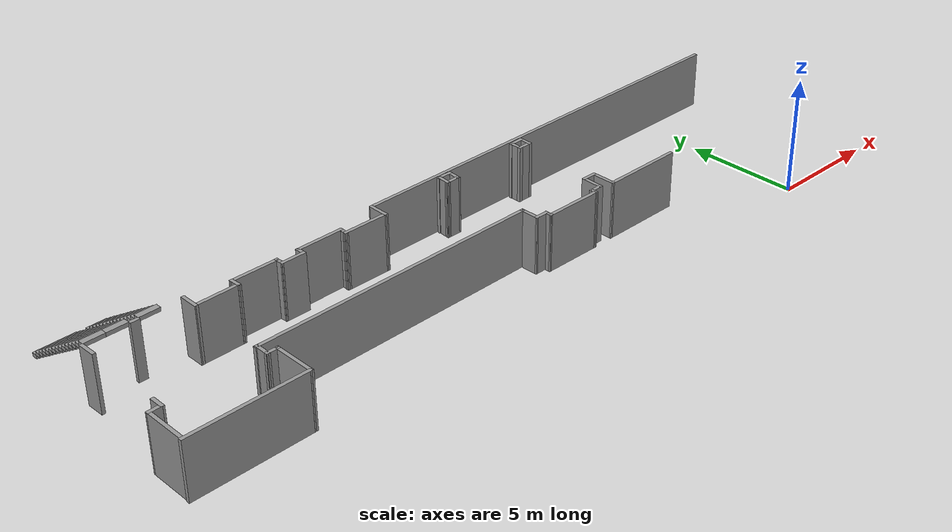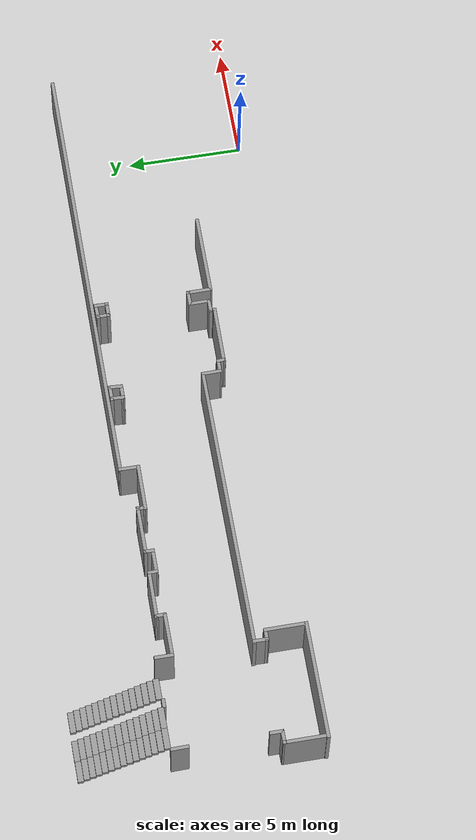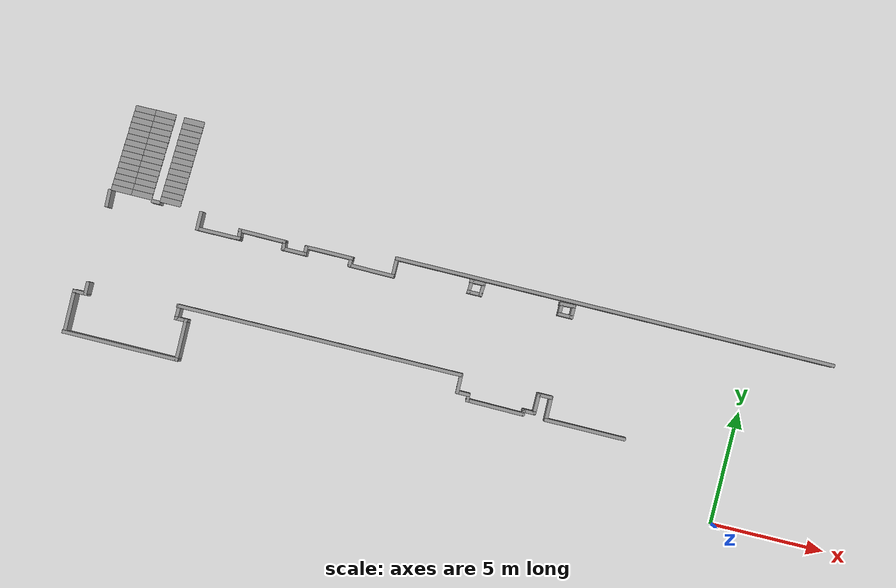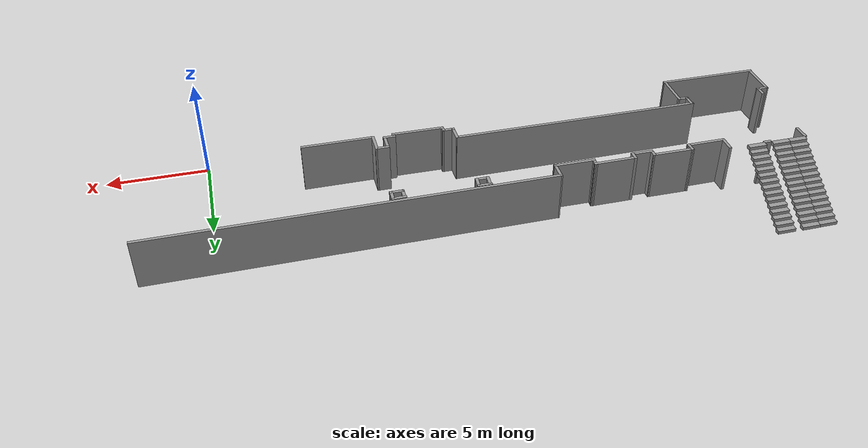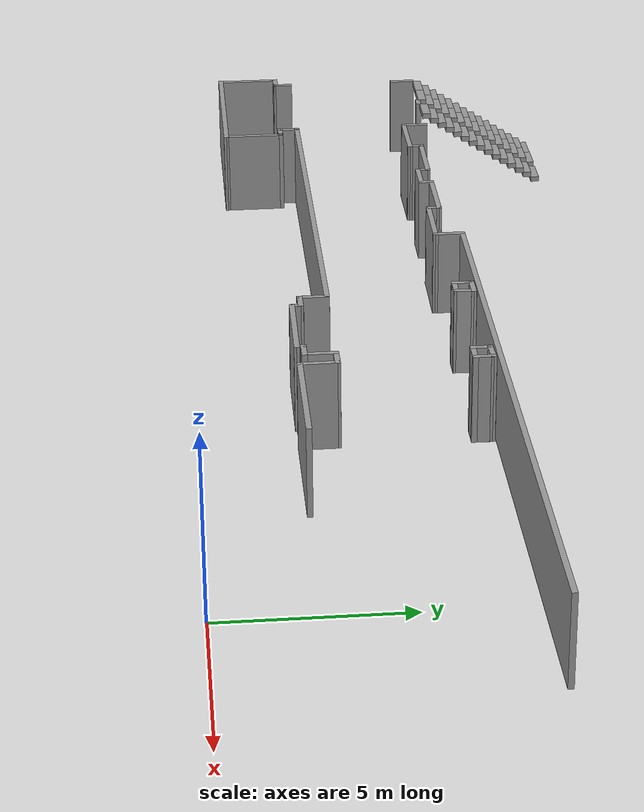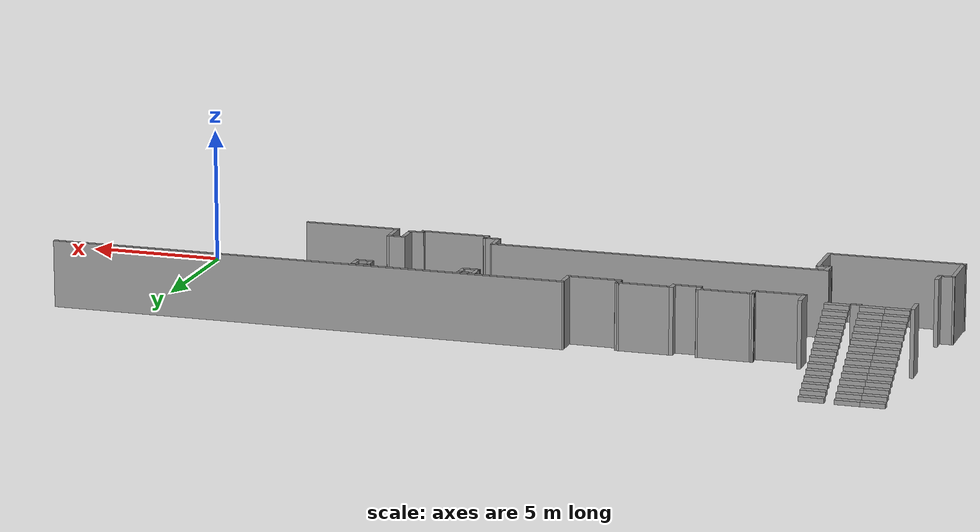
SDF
<sdf version="1.7">
 <model name="TD_n1_largo">
  <pose>-6.3187 -9.13173 0 0 -0 0</pose>
  <link name="Stairs_1">
   <visual name="Stairs_1_Visual_0">
    <pose>-21.8201 20.6908 0.083333 0 -0 0</pose>
    <geometry><box><size>0.9 0.258 0.166667</size></box></geometry>
    <material>
     <script><uri>file://media/materials/scripts/gazebo.material</uri><name>Gazebo/Grey</name></script>
     <ambient>1 1 1 1</ambient>
    </material>
    <meta><layer>0</layer></meta>
   </visual>
   <collision name="Stairs_1_Collision_0">
    <geometry><box><size>0.9 0.258 0.166667</size></box></geometry>
    <pose>-21.8201 20.6908 0.083333 0 -0 0</pose>
   </collision>
   <visual name="Stairs_1_Visual_1">
    <pose>-21.8201 20.4328 0.25 0 -0 0</pose>
    <geometry><box><size>0.9 0.258 0.166667</size></box></geometry>
    <material>
     <script><uri>file://media/materials/scripts/gazebo.material</uri><name>Gazebo/Grey</name></script>
     <ambient>1 1 1 1</ambient>
    </material>
    <meta><layer>0</layer></meta>
   </visual>
   <collision name="Stairs_1_Collision_1">
    <geometry><box><size>0.9 0.258 0.166667</size></box></geometry>
    <pose>-21.8201 20.4328 0.25 0 -0 0</pose>
   </collision>
   <visual name="Stairs_1_Visual_2">
    <pose>-21.8201 20.1748 0.416667 0 -0 0</pose>
    <geometry><box><size>0.9 0.258 0.166667</size></box></geometry>
    <material>
     <script><uri>file://media/materials/scripts/gazebo.material</uri><name>Gazebo/Grey</name></script>
     <ambient>1 1 1 1</ambient>
    </material>
    <meta><layer>0</layer></meta>
   </visual>
   <collision name="Stairs_1_Collision_2">
    <geometry><box><size>0.9 0.258 0.166667</size></box></geometry>
    <pose>-21.8201 20.1748 0.416667 0 -0 0</pose>
   </collision>
   <visual name="Stairs_1_Visual_3">
    <pose>-21.8201 19.9168 0.583333 0 -0 0</pose>
    <geometry><box><size>0.9 0.258 0.166667</size></box></geometry>
    <material>
     <script><uri>file://media/materials/scripts/gazebo.material</uri><name>Gazebo/Grey</name></script>
     <ambient>1 1 1 1</ambient>
    </material>
    <meta><layer>0</layer></meta>
   </visual>
   <collision name="Stairs_1_Collision_3">
    <geometry><box><size>0.9 0.258 0.166667</size></box></geometry>
    <pose>-21.8201 19.9168 0.583333 0 -0 0</pose>
   </collision>
   <visual name="Stairs_1_Visual_4">
    <pose>-21.8201 19.6588 0.75 0 -0 0</pose>
    <geometry><box><size>0.9 0.258 0.166667</size></box></geometry>
    <material>
     <script><uri>file://media/materials/scripts/gazebo.material</uri><name>Gazebo/Grey</name></script>
     <ambient>1 1 1 1</ambient>
    </material>
    <meta><layer>0</layer></meta>
   </visual>
   <collision name="Stairs_1_Collision_4">
    <geometry><box><size>0.9 0.258 0.166667</size></box></geometry>
    <pose>-21.8201 19.6588 0.75 0 -0 0</pose>
   </collision>
   <visual name="Stairs_1_Visual_5">
    <pose>-21.8201 19.4008 0.916667 0 -0 0</pose>
    <geometry><box><size>0.9 0.258 0.166667</size></box></geometry>
    <material>
     <script><uri>file://media/materials/scripts/gazebo.material</uri><name>Gazebo/Grey</name></script>
     <ambient>1 1 1 1</ambient>
    </material>
    <meta><layer>0</layer></meta>
   </visual>
   <collision name="Stairs_1_Collision_5">
    <geometry><box><size>0.9 0.258 0.166667</size></box></geometry>
    <pose>-21.8201 19.4008 0.916667 0 -0 0</pose>
   </collision>
   <visual name="Stairs_1_Visual_6">
    <pose>-21.8201 19.1428 1.08333 0 -0 0</pose>
    <geometry><box><size>0.9 0.258 0.166667</size></box></geometry>
    <material>
     <script><uri>file://media/materials/scripts/gazebo.material</uri><name>Gazebo/Grey</name></script>
     <ambient>1 1 1 1</ambient>
    </material>
    <meta><layer>0</layer></meta>
   </visual>
   <collision name="Stairs_1_Collision_6">
    <geometry><box><size>0.9 0.258 0.166667</size></box></geometry>
    <pose>-21.8201 19.1428 1.08333 0 -0 0</pose>
   </collision>
   <visual name="Stairs_1_Visual_7">
    <pose>-21.8201 18.8848 1.25 0 -0 0</pose>
    <geometry><box><size>0.9 0.258 0.166667</size></box></geometry>
    <material>
     <script><uri>file://media/materials/scripts/gazebo.material</uri><name>Gazebo/Grey</name></script>
     <ambient>1 1 1 1</ambient>
    </material>
    <meta><layer>0</layer></meta>
   </visual>
   <collision name="Stairs_1_Collision_7">
    <geometry><box><size>0.9 0.258 0.166667</size></box></geometry>
    <pose>-21.8201 18.8848 1.25 0 -0 0</pose>
   </collision>
   <visual name="Stairs_1_Visual_8">
    <pose>-21.8201 18.6268 1.41667 0 -0 0</pose>
    <geometry><box><size>0.9 0.258 0.166667</size></box></geometry>
    <material>
     <script><uri>file://media/materials/scripts/gazebo.material</uri><name>Gazebo/Grey</name></script>
     <ambient>1 1 1 1</ambient>
    </material>
    <meta><layer>0</layer></meta>
   </visual>
   <collision name="Stairs_1_Collision_8">
    <geometry><box><size>0.9 0.258 0.166667</size></box></geometry>
    <pose>-21.8201 18.6268 1.41667 0 -0 0</pose>
   </collision>
   <visual name="Stairs_1_Visual_9">
    <pose>-21.8201 18.3688 1.58333 0 -0 0</pose>
    <geometry><box><size>0.9 0.258 0.166667</size></box></geometry>
    <material>
     <script><uri>file://media/materials/scripts/gazebo.material</uri><name>Gazebo/Grey</name></script>
     <ambient>1 1 1 1</ambient>
    </material>
    <meta><layer>0</layer></meta>
   </visual>
   <collision name="Stairs_1_Collision_9">
    <geometry><box><size>0.9 0.258 0.166667</size></box></geometry>
    <pose>-21.8201 18.3688 1.58333 0 -0 0</pose>
   </collision>
   <visual name="Stairs_1_Visual_10">
    <pose>-21.8201 18.1108 1.75 0 -0 0</pose>
    <geometry><box><size>0.9 0.258 0.166667</size></box></geometry>
    <material>
     <script><uri>file://media/materials/scripts/gazebo.material</uri><name>Gazebo/Grey</name></script>
     <ambient>1 1 1 1</ambient>
    </material>
    <meta><layer>0</layer></meta>
   </visual>
   <collision name="Stairs_1_Collision_10">
    <geometry><box><size>0.9 0.258 0.166667</size></box></geometry>
    <pose>-21.8201 18.1108 1.75 0 -0 0</pose>
   </collision>
   <visual name="Stairs_1_Visual_11">
    <pose>-21.8201 17.8528 1.91667 0 -0 0</pose>
    <geometry><box><size>0.9 0.258 0.166667</size></box></geometry>
    <material>
     <script><uri>file://media/materials/scripts/gazebo.material</uri><name>Gazebo/Grey</name></script>
     <ambient>1 1 1 1</ambient>
    </material>
    <meta><layer>0</layer></meta>
   </visual>
   <collision name="Stairs_1_Collision_11">
    <geometry><box><size>0.9 0.258 0.166667</size></box></geometry>
    <pose>-21.8201 17.8528 1.91667 0 -0 0</pose>
   </collision>
   <visual name="Stairs_1_Visual_12">
    <pose>-21.8201 17.5948 2.08333 0 -0 0</pose>
    <geometry><box><size>0.9 0.258 0.166667</size></box></geometry>
    <material>
     <script><uri>file://media/materials/scripts/gazebo.material</uri><name>Gazebo/Grey</name></script>
     <ambient>1 1 1 1</ambient>
    </material>
    <meta><layer>0</layer></meta>
   </visual>
   <collision name="Stairs_1_Collision_12">
    <geometry><box><size>0.9 0.258 0.166667</size></box></geometry>
    <pose>-21.8201 17.5948 2.08333 0 -0 0</pose>
   </collision>
   <visual name="Stairs_1_Visual_13">
    <pose>-21.8201 17.3368 2.25 0 -0 0</pose>
    <geometry><box><size>0.9 0.258 0.166667</size></box></geometry>
    <material>
     <script><uri>file://media/materials/scripts/gazebo.material</uri><name>Gazebo/Grey</name></script>
     <ambient>1 1 1 1</ambient>
    </material>
    <meta><layer>0</layer></meta>
   </visual>
   <collision name="Stairs_1_Collision_13">
    <geometry><box><size>0.9 0.258 0.166667</size></box></geometry>
    <pose>-21.8201 17.3368 2.25 0 -0 0</pose>
   </collision>
   <visual name="Stairs_1_Visual_14">
    <pose>-21.8201 17.0788 2.41667 0 -0 0</pose>
    <geometry><box><size>0.9 0.258 0.166667</size></box></geometry>
    <material>
     <script><uri>file://media/materials/scripts/gazebo.material</uri><name>Gazebo/Grey</name></script>
     <ambient>1 1 1 1</ambient>
    </material>
    <meta><layer>0</layer></meta>
   </visual>
   <collision name="Stairs_1_Collision_14">
    <geometry><box><size>0.9 0.258 0.166667</size></box></geometry>
    <pose>-21.8201 17.0788 2.41667 0 -0 0</pose>
   </collision>
  </link>
  <link name="Stairs_2">
   <visual name="Stairs_2_Visual_0">
    <pose>-20.9263 20.6987 0.083333 0 -0 0</pose>
    <geometry><box><size>0.91 0.258667 0.166667</size></box></geometry>
    <material>
     <script><uri>file://media/materials/scripts/gazebo.material</uri><name>Gazebo/Grey</name></script>
     <ambient>1 1 1 1</ambient>
    </material>
    <meta><layer>0</layer></meta>
   </visual>
   <collision name="Stairs_2_Collision_0">
    <geometry><box><size>0.91 0.258667 0.166667</size></box></geometry>
    <pose>-20.9263 20.6987 0.083333 0 -0 0</pose>
   </collision>
   <visual name="Stairs_2_Visual_1">
    <pose>-20.9263 20.4401 0.25 0 -0 0</pose>
    <geometry><box><size>0.91 0.258667 0.166667</size></box></geometry>
    <material>
     <script><uri>file://media/materials/scripts/gazebo.material</uri><name>Gazebo/Grey</name></script>
     <ambient>1 1 1 1</ambient>
    </material>
    <meta><layer>0</layer></meta>
   </visual>
   <collision name="Stairs_2_Collision_1">
    <geometry><box><size>0.91 0.258667 0.166667</size></box></geometry>
    <pose>-20.9263 20.4401 0.25 0 -0 0</pose>
   </collision>
   <visual name="Stairs_2_Visual_2">
    <pose>-20.9263 20.1814 0.416667 0 -0 0</pose>
    <geometry><box><size>0.91 0.258667 0.166667</size></box></geometry>
    <material>
     <script><uri>file://media/materials/scripts/gazebo.material</uri><name>Gazebo/Grey</name></script>
     <ambient>1 1 1 1</ambient>
    </material>
    <meta><layer>0</layer></meta>
   </visual>
   <collision name="Stairs_2_Collision_2">
    <geometry><box><size>0.91 0.258667 0.166667</size></box></geometry>
    <pose>-20.9263 20.1814 0.416667 0 -0 0</pose>
   </collision>
   <visual name="Stairs_2_Visual_3">
    <pose>-20.9263 19.9227 0.583333 0 -0 0</pose>
    <geometry><box><size>0.91 0.258667 0.166667</size></box></geometry>
    <material>
     <script><uri>file://media/materials/scripts/gazebo.material</uri><name>Gazebo/Grey</name></script>
     <ambient>1 1 1 1</ambient>
    </material>
    <meta><layer>0</layer></meta>
   </visual>
   <collision name="Stairs_2_Collision_3">
    <geometry><box><size>0.91 0.258667 0.166667</size></box></geometry>
    <pose>-20.9263 19.9227 0.583333 0 -0 0</pose>
   </collision>
   <visual name="Stairs_2_Visual_4">
    <pose>-20.9263 19.6641 0.75 0 -0 0</pose>
    <geometry><box><size>0.91 0.258667 0.166667</size></box></geometry>
    <material>
     <script><uri>file://media/materials/scripts/gazebo.material</uri><name>Gazebo/Grey</name></script>
     <ambient>1 1 1 1</ambient>
    </material>
    <meta><layer>0</layer></meta>
   </visual>
   <collision name="Stairs_2_Collision_4">
    <geometry><box><size>0.91 0.258667 0.166667</size></box></geometry>
    <pose>-20.9263 19.6641 0.75 0 -0 0</pose>
   </collision>
   <visual name="Stairs_2_Visual_5">
    <pose>-20.9263 19.4054 0.916667 0 -0 0</pose>
    <geometry><box><size>0.91 0.258667 0.166667</size></box></geometry>
    <material>
     <script><uri>file://media/materials/scripts/gazebo.material</uri><name>Gazebo/Grey</name></script>
     <ambient>1 1 1 1</ambient>
    </material>
    <meta><layer>0</layer></meta>
   </visual>
   <collision name="Stairs_2_Collision_5">
    <geometry><box><size>0.91 0.258667 0.166667</size></box></geometry>
    <pose>-20.9263 19.4054 0.916667 0 -0 0</pose>
   </collision>
   <visual name="Stairs_2_Visual_6">
    <pose>-20.9263 19.1467 1.08333 0 -0 0</pose>
    <geometry><box><size>0.91 0.258667 0.166667</size></box></geometry>
    <material>
     <script><uri>file://media/materials/scripts/gazebo.material</uri><name>Gazebo/Grey</name></script>
     <ambient>1 1 1 1</ambient>
    </material>
    <meta><layer>0</layer></meta>
   </visual>
   <collision name="Stairs_2_Collision_6">
    <geometry><box><size>0.91 0.258667 0.166667</size></box></geometry>
    <pose>-20.9263 19.1467 1.08333 0 -0 0</pose>
   </collision>
   <visual name="Stairs_2_Visual_7">
    <pose>-20.9263 18.8881 1.25 0 -0 0</pose>
    <geometry><box><size>0.91 0.258667 0.166667</size></box></geometry>
    <material>
     <script><uri>file://media/materials/scripts/gazebo.material</uri><name>Gazebo/Grey</name></script>
     <ambient>1 1 1 1</ambient>
    </material>
    <meta><layer>0</layer></meta>
   </visual>
   <collision name="Stairs_2_Collision_7">
    <geometry><box><size>0.91 0.258667 0.166667</size></box></geometry>
    <pose>-20.9263 18.8881 1.25 0 -0 0</pose>
   </collision>
   <visual name="Stairs_2_Visual_8">
    <pose>-20.9263 18.6294 1.41667 0 -0 0</pose>
    <geometry><box><size>0.91 0.258667 0.166667</size></box></geometry>
    <material>
     <script><uri>file://media/materials/scripts/gazebo.material</uri><name>Gazebo/Grey</name></script>
     <ambient>1 1 1 1</ambient>
    </material>
    <meta><layer>0</layer></meta>
   </visual>
   <collision name="Stairs_2_Collision_8">
    <geometry><box><size>0.91 0.258667 0.166667</size></box></geometry>
    <pose>-20.9263 18.6294 1.41667 0 -0 0</pose>
   </collision>
   <visual name="Stairs_2_Visual_9">
    <pose>-20.9263 18.3707 1.58333 0 -0 0</pose>
    <geometry><box><size>0.91 0.258667 0.166667</size></box></geometry>
    <material>
     <script><uri>file://media/materials/scripts/gazebo.material</uri><name>Gazebo/Grey</name></script>
     <ambient>1 1 1 1</ambient>
    </material>
    <meta><layer>0</layer></meta>
   </visual>
   <collision name="Stairs_2_Collision_9">
    <geometry><box><size>0.91 0.258667 0.166667</size></box></geometry>
    <pose>-20.9263 18.3707 1.58333 0 -0 0</pose>
   </collision>
   <visual name="Stairs_2_Visual_10">
    <pose>-20.9263 18.1121 1.75 0 -0 0</pose>
    <geometry><box><size>0.91 0.258667 0.166667</size></box></geometry>
    <material>
     <script><uri>file://media/materials/scripts/gazebo.material</uri><name>Gazebo/Grey</name></script>
     <ambient>1 1 1 1</ambient>
    </material>
    <meta><layer>0</layer></meta>
   </visual>
   <collision name="Stairs_2_Collision_10">
    <geometry><box><size>0.91 0.258667 0.166667</size></box></geometry>
    <pose>-20.9263 18.1121 1.75 0 -0 0</pose>
   </collision>
   <visual name="Stairs_2_Visual_11">
    <pose>-20.9263 17.8534 1.91667 0 -0 0</pose>
    <geometry><box><size>0.91 0.258667 0.166667</size></box></geometry>
    <material>
     <script><uri>file://media/materials/scripts/gazebo.material</uri><name>Gazebo/Grey</name></script>
     <ambient>1 1 1 1</ambient>
    </material>
    <meta><layer>0</layer></meta>
   </visual>
   <collision name="Stairs_2_Collision_11">
    <geometry><box><size>0.91 0.258667 0.166667</size></box></geometry>
    <pose>-20.9263 17.8534 1.91667 0 -0 0</pose>
   </collision>
   <visual name="Stairs_2_Visual_12">
    <pose>-20.9263 17.5947 2.08333 0 -0 0</pose>
    <geometry><box><size>0.91 0.258667 0.166667</size></box></geometry>
    <material>
     <script><uri>file://media/materials/scripts/gazebo.material</uri><name>Gazebo/Grey</name></script>
     <ambient>1 1 1 1</ambient>
    </material>
    <meta><layer>0</layer></meta>
   </visual>
   <collision name="Stairs_2_Collision_12">
    <geometry><box><size>0.91 0.258667 0.166667</size></box></geometry>
    <pose>-20.9263 17.5947 2.08333 0 -0 0</pose>
   </collision>
   <visual name="Stairs_2_Visual_13">
    <pose>-20.9263 17.3361 2.25 0 -0 0</pose>
    <geometry><box><size>0.91 0.258667 0.166667</size></box></geometry>
    <material>
     <script><uri>file://media/materials/scripts/gazebo.material</uri><name>Gazebo/Grey</name></script>
     <ambient>1 1 1 1</ambient>
    </material>
    <meta><layer>0</layer></meta>
   </visual>
   <collision name="Stairs_2_Collision_13">
    <geometry><box><size>0.91 0.258667 0.166667</size></box></geometry>
    <pose>-20.9263 17.3361 2.25 0 -0 0</pose>
   </collision>
   <visual name="Stairs_2_Visual_14">
    <pose>-20.9263 17.0774 2.41667 0 -0 0</pose>
    <geometry><box><size>0.91 0.258667 0.166667</size></box></geometry>
    <material>
     <script><uri>file://media/materials/scripts/gazebo.material</uri><name>Gazebo/Grey</name></script>
     <ambient>1 1 1 1</ambient>
    </material>
    <meta><layer>0</layer></meta>
   </visual>
   <collision name="Stairs_2_Collision_14">
    <geometry><box><size>0.91 0.258667 0.166667</size></box></geometry>
    <pose>-20.9263 17.0774 2.41667 0 -0 0</pose>
   </collision>
  </link>
  <link name="Stairs_3">
   <visual name="Stairs_3_Visual_0">
    <pose>-19.6563 20.6794 0.083333 0 -0 0</pose>
    <geometry><box><size>0.91 0.257333 0.166667</size></box></geometry>
    <material>
     <script><uri>file://media/materials/scripts/gazebo.material</uri><name>Gazebo/Grey</name></script>
     <ambient>1 1 1 1</ambient>
    </material>
    <meta><layer>0</layer></meta>
   </visual>
   <collision name="Stairs_3_Collision_0">
    <geometry><box><size>0.91 0.257333 0.166667</size></box></geometry>
    <pose>-19.6563 20.6794 0.083333 0 -0 0</pose>
   </collision>
   <visual name="Stairs_3_Visual_1">
    <pose>-19.6563 20.4221 0.25 0 -0 0</pose>
    <geometry><box><size>0.91 0.257333 0.166667</size></box></geometry>
    <material>
     <script><uri>file://media/materials/scripts/gazebo.material</uri><name>Gazebo/Grey</name></script>
     <ambient>1 1 1 1</ambient>
    </material>
    <meta><layer>0</layer></meta>
   </visual>
   <collision name="Stairs_3_Collision_1">
    <geometry><box><size>0.91 0.257333 0.166667</size></box></geometry>
    <pose>-19.6563 20.4221 0.25 0 -0 0</pose>
   </collision>
   <visual name="Stairs_3_Visual_2">
    <pose>-19.6563 20.1647 0.416667 0 -0 0</pose>
    <geometry><box><size>0.91 0.257333 0.166667</size></box></geometry>
    <material>
     <script><uri>file://media/materials/scripts/gazebo.material</uri><name>Gazebo/Grey</name></script>
     <ambient>1 1 1 1</ambient>
    </material>
    <meta><layer>0</layer></meta>
   </visual>
   <collision name="Stairs_3_Collision_2">
    <geometry><box><size>0.91 0.257333 0.166667</size></box></geometry>
    <pose>-19.6563 20.1647 0.416667 0 -0 0</pose>
   </collision>
   <visual name="Stairs_3_Visual_3">
    <pose>-19.6563 19.9074 0.583333 0 -0 0</pose>
    <geometry><box><size>0.91 0.257333 0.166667</size></box></geometry>
    <material>
     <script><uri>file://media/materials/scripts/gazebo.material</uri><name>Gazebo/Grey</name></script>
     <ambient>1 1 1 1</ambient>
    </material>
    <meta><layer>0</layer></meta>
   </visual>
   <collision name="Stairs_3_Collision_3">
    <geometry><box><size>0.91 0.257333 0.166667</size></box></geometry>
    <pose>-19.6563 19.9074 0.583333 0 -0 0</pose>
   </collision>
   <visual name="Stairs_3_Visual_4">
    <pose>-19.6563 19.6501 0.75 0 -0 0</pose>
    <geometry><box><size>0.91 0.257333 0.166667</size></box></geometry>
    <material>
     <script><uri>file://media/materials/scripts/gazebo.material</uri><name>Gazebo/Grey</name></script>
     <ambient>1 1 1 1</ambient>
    </material>
    <meta><layer>0</layer></meta>
   </visual>
   <collision name="Stairs_3_Collision_4">
    <geometry><box><size>0.91 0.257333 0.166667</size></box></geometry>
    <pose>-19.6563 19.6501 0.75 0 -0 0</pose>
   </collision>
   <visual name="Stairs_3_Visual_5">
    <pose>-19.6563 19.3927 0.916667 0 -0 0</pose>
    <geometry><box><size>0.91 0.257333 0.166667</size></box></geometry>
    <material>
     <script><uri>file://media/materials/scripts/gazebo.material</uri><name>Gazebo/Grey</name></script>
     <ambient>1 1 1 1</ambient>
    </material>
    <meta><layer>0</layer></meta>
   </visual>
   <collision name="Stairs_3_Collision_5">
    <geometry><box><size>0.91 0.257333 0.166667</size></box></geometry>
    <pose>-19.6563 19.3927 0.916667 0 -0 0</pose>
   </collision>
   <visual name="Stairs_3_Visual_6">
    <pose>-19.6563 19.1354 1.08333 0 -0 0</pose>
    <geometry><box><size>0.91 0.257333 0.166667</size></box></geometry>
    <material>
     <script><uri>file://media/materials/scripts/gazebo.material</uri><name>Gazebo/Grey</name></script>
     <ambient>1 1 1 1</ambient>
    </material>
    <meta><layer>0</layer></meta>
   </visual>
   <collision name="Stairs_3_Collision_6">
    <geometry><box><size>0.91 0.257333 0.166667</size></box></geometry>
    <pose>-19.6563 19.1354 1.08333 0 -0 0</pose>
   </collision>
   <visual name="Stairs_3_Visual_7">
    <pose>-19.6563 18.8781 1.25 0 -0 0</pose>
    <geometry><box><size>0.91 0.257333 0.166667</size></box></geometry>
    <material>
     <script><uri>file://media/materials/scripts/gazebo.material</uri><name>Gazebo/Grey</name></script>
     <ambient>1 1 1 1</ambient>
    </material>
    <meta><layer>0</layer></meta>
   </visual>
   <collision name="Stairs_3_Collision_7">
    <geometry><box><size>0.91 0.257333 0.166667</size></box></geometry>
    <pose>-19.6563 18.8781 1.25 0 -0 0</pose>
   </collision>
   <visual name="Stairs_3_Visual_8">
    <pose>-19.6563 18.6207 1.41667 0 -0 0</pose>
    <geometry><box><size>0.91 0.257333 0.166667</size></box></geometry>
    <material>
     <script><uri>file://media/materials/scripts/gazebo.material</uri><name>Gazebo/Grey</name></script>
     <ambient>1 1 1 1</ambient>
    </material>
    <meta><layer>0</layer></meta>
   </visual>
   <collision name="Stairs_3_Collision_8">
    <geometry><box><size>0.91 0.257333 0.166667</size></box></geometry>
    <pose>-19.6563 18.6207 1.41667 0 -0 0</pose>
   </collision>
   <visual name="Stairs_3_Visual_9">
    <pose>-19.6563 18.3634 1.58333 0 -0 0</pose>
    <geometry><box><size>0.91 0.257333 0.166667</size></box></geometry>
    <material>
     <script><uri>file://media/materials/scripts/gazebo.material</uri><name>Gazebo/Grey</name></script>
     <ambient>1 1 1 1</ambient>
    </material>
    <meta><layer>0</layer></meta>
   </visual>
   <collision name="Stairs_3_Collision_9">
    <geometry><box><size>0.91 0.257333 0.166667</size></box></geometry>
    <pose>-19.6563 18.3634 1.58333 0 -0 0</pose>
   </collision>
   <visual name="Stairs_3_Visual_10">
    <pose>-19.6563 18.1061 1.75 0 -0 0</pose>
    <geometry><box><size>0.91 0.257333 0.166667</size></box></geometry>
    <material>
     <script><uri>file://media/materials/scripts/gazebo.material</uri><name>Gazebo/Grey</name></script>
     <ambient>1 1 1 1</ambient>
    </material>
    <meta><layer>0</layer></meta>
   </visual>
   <collision name="Stairs_3_Collision_10">
    <geometry><box><size>0.91 0.257333 0.166667</size></box></geometry>
    <pose>-19.6563 18.1061 1.75 0 -0 0</pose>
   </collision>
   <visual name="Stairs_3_Visual_11">
    <pose>-19.6563 17.8487 1.91667 0 -0 0</pose>
    <geometry><box><size>0.91 0.257333 0.166667</size></box></geometry>
    <material>
     <script><uri>file://media/materials/scripts/gazebo.material</uri><name>Gazebo/Grey</name></script>
     <ambient>1 1 1 1</ambient>
    </material>
    <meta><layer>0</layer></meta>
   </visual>
   <collision name="Stairs_3_Collision_11">
    <geometry><box><size>0.91 0.257333 0.166667</size></box></geometry>
    <pose>-19.6563 17.8487 1.91667 0 -0 0</pose>
   </collision>
   <visual name="Stairs_3_Visual_12">
    <pose>-19.6563 17.5914 2.08333 0 -0 0</pose>
    <geometry><box><size>0.91 0.257333 0.166667</size></box></geometry>
    <material>
     <script><uri>file://media/materials/scripts/gazebo.material</uri><name>Gazebo/Grey</name></script>
     <ambient>1 1 1 1</ambient>
    </material>
    <meta><layer>0</layer></meta>
   </visual>
   <collision name="Stairs_3_Collision_12">
    <geometry><box><size>0.91 0.257333 0.166667</size></box></geometry>
    <pose>-19.6563 17.5914 2.08333 0 -0 0</pose>
   </collision>
   <visual name="Stairs_3_Visual_13">
    <pose>-19.6563 17.3341 2.25 0 -0 0</pose>
    <geometry><box><size>0.91 0.257333 0.166667</size></box></geometry>
    <material>
     <script><uri>file://media/materials/scripts/gazebo.material</uri><name>Gazebo/Grey</name></script>
     <ambient>1 1 1 1</ambient>
    </material>
    <meta><layer>0</layer></meta>
   </visual>
   <collision name="Stairs_3_Collision_13">
    <geometry><box><size>0.91 0.257333 0.166667</size></box></geometry>
    <pose>-19.6563 17.3341 2.25 0 -0 0</pose>
   </collision>
   <visual name="Stairs_3_Visual_14">
    <pose>-19.6563 17.0767 2.41667 0 -0 0</pose>
    <geometry><box><size>0.91 0.257333 0.166667</size></box></geometry>
    <material>
     <script><uri>file://media/materials/scripts/gazebo.material</uri><name>Gazebo/Grey</name></script>
     <ambient>1 1 1 1</ambient>
    </material>
    <meta><layer>0</layer></meta>
   </visual>
   <collision name="Stairs_3_Collision_14">
    <geometry><box><size>0.91 0.257333 0.166667</size></box></geometry>
    <pose>-19.6563 17.0767 2.41667 0 -0 0</pose>
   </collision>
  </link>
  <link name="Wall_370">
   <collision name="Wall_370_Collision">
    <geometry><box><size>0.598647 0.15 2.5</size></box></geometry>
    <pose>0 0 1.25 0 -0 0</pose>
   </collision>
   <visual name="Wall_370_Visual">
    <pose>0 0 1.25 0 -0 0</pose>
    <geometry><box><size>0.598647 0.15 2.5</size></box></geometry>
    <material>
     <script><uri>file://media/materials/scripts/gazebo.material</uri><name>Gazebo/Grey</name></script>
     <ambient>1 1 1 1</ambient>
    </material>
    <meta><layer>0</layer></meta>
   </visual>
   <pose>-22.2833 12.595 0 0 -0 -1.5708</pose>
  </link>
  <link name="Wall_371">
   <collision name="Wall_371_Collision">
    <geometry><box><size>0.632766 0.15 2.5</size></box></geometry>
    <pose>0 0 1.25 0 -0 0</pose>
   </collision>
   <visual name="Wall_371_Visual">
    <pose>0 0 1.25 0 -0 0</pose>
    <geometry><box><size>0.632766 0.15 2.5</size></box></geometry>
    <material>
     <script><uri>file://media/materials/scripts/gazebo.material</uri><name>Gazebo/Grey</name></script>
     <ambient>1 1 1 1</ambient>
    </material>
    <meta><layer>0</layer></meta>
   </visual>
   <pose>-22.5247 12.3659 0 0 -0 -3.1213</pose>
  </link>
  <link name="Wall_372">
   <collision name="Wall_372_Collision">
    <geometry><box><size>1.79841 0.15 2.5</size></box></geometry>
    <pose>0 0 1.25 0 -0 0</pose>
   </collision>
   <visual name="Wall_372_Visual">
    <pose>0 0 1.25 0 -0 0</pose>
    <geometry><box><size>1.79841 0.15 2.5</size></box></geometry>
    <material>
     <script><uri>file://media/materials/scripts/gazebo.material</uri><name>Gazebo/Grey</name></script>
     <ambient>1 1 1 1</ambient>
    </material>
    <meta><layer>0</layer></meta>
   </visual>
   <pose>-22.7623 11.5368 0 0 -0 -1.56621</pose>
  </link>
  <link name="Wall_374">
   <collision name="Wall_374_Collision">
    <geometry><box><size>5.13535 0.15 2.5</size></box></geometry>
    <pose>0 0 1.25 0 -0 0</pose>
   </collision>
   <visual name="Wall_374_Visual">
    <pose>0 0 1.25 0 -0 0</pose>
    <geometry><box><size>5.13535 0.15 2.5</size></box></geometry>
    <material>
     <script><uri>file://media/materials/scripts/gazebo.material</uri><name>Gazebo/Grey</name></script>
     <ambient>1 1 1 1</ambient>
    </material>
    <meta><layer>0</layer></meta>
   </visual>
   <pose>-20.2961 10.5582 0 0 -0 -0.001238</pose>
  </link>
  <link name="Wall_376">
   <collision name="Wall_376_Collision">
    <geometry><box><size>1.8693 0.15 2.5</size></box></geometry>
    <pose>0 0 1.25 0 -0 0</pose>
   </collision>
   <visual name="Wall_376_Visual">
    <pose>0 0 1.25 0 -0 0</pose>
    <geometry><box><size>1.8693 0.15 2.5</size></box></geometry>
    <material>
     <script><uri>file://media/materials/scripts/gazebo.material</uri><name>Gazebo/Grey</name></script>
     <ambient>1 1 1 1</ambient>
    </material>
    <meta><layer>0</layer></meta>
   </visual>
   <pose>-17.81 11.4148 0 0 -0 1.57849</pose>
  </link>
  <link name="Wall_377">
   <collision name="Wall_377_Collision">
    <geometry><box><size>0.574026 0.15 2.5</size></box></geometry>
    <pose>0 0 1.25 0 -0 0</pose>
   </collision>
   <visual name="Wall_377_Visual">
    <pose>0 0 1.25 0 -0 0</pose>
    <geometry><box><size>0.574026 0.15 2.5</size></box></geometry>
    <material>
     <script><uri>file://media/materials/scripts/gazebo.material</uri><name>Gazebo/Grey</name></script>
     <ambient>1 1 1 1</ambient>
    </material>
    <meta><layer>0</layer></meta>
   </visual>
   <pose>-18.0282 12.2744 0 0 -0 3.14159</pose>
  </link>
  <link name="Wall_378">
   <collision name="Wall_378_Collision">
    <geometry><box><size>0.683508 0.15 2.5</size></box></geometry>
    <pose>0 0 1.25 0 -0 0</pose>
   </collision>
   <visual name="Wall_378_Visual">
    <pose>0 0 1.25 0 -0 0</pose>
    <geometry><box><size>0.683508 0.15 2.5</size></box></geometry>
    <material>
     <script><uri>file://media/materials/scripts/gazebo.material</uri><name>Gazebo/Grey</name></script>
     <ambient>1 1 1 1</ambient>
    </material>
    <meta><layer>0</layer></meta>
   </visual>
   <pose>-18.2373 12.5411 0 0 -0 1.56126</pose>
  </link>
  <link name="Wall_380">
   <collision name="Wall_380_Collision">
    <geometry><box><size>12.6096 0.15 2.5</size></box></geometry>
    <pose>0 0 1.25 0 -0 0</pose>
   </collision>
   <visual name="Wall_380_Visual">
    <pose>0 0 1.25 0 -0 0</pose>
    <geometry><box><size>12.6096 0.15 2.5</size></box></geometry>
    <material>
     <script><uri>file://media/materials/scripts/gazebo.material</uri><name>Gazebo/Grey</name></script>
     <ambient>1 1 1 1</ambient>
    </material>
    <meta><layer>0</layer></meta>
   </visual>
   <pose>-12.0447 12.8233 0 0 -0 0.001914</pose>
  </link>
  <link name="Wall_383">
   <collision name="Wall_383_Collision">
    <geometry><box><size>0.7743 0.15 2.5</size></box></geometry>
    <pose>0 0 1.25 0 -0 0</pose>
   </collision>
   <visual name="Wall_383_Visual">
    <pose>0 0 1.25 0 -0 0</pose>
    <geometry><box><size>0.7743 0.15 2.5</size></box></geometry>
    <material>
     <script><uri>file://media/materials/scripts/gazebo.material</uri><name>Gazebo/Grey</name></script>
     <ambient>1 1 1 1</ambient>
    </material>
    <meta><layer>0</layer></meta>
   </visual>
   <pose>-22.3097 16.5879 0 0 -0 1.59518</pose>
  </link>
  <link name="Wall_385">
   <collision name="Wall_385_Collision">
    <geometry><box><size>0.829143 0.15 2.5</size></box></geometry>
    <pose>0 0 1.25 0 -0 0</pose>
   </collision>
   <visual name="Wall_385_Visual">
    <pose>0 0 1.25 0 -0 0</pose>
    <geometry><box><size>0.829143 0.15 2.5</size></box></geometry>
    <material>
     <script><uri>file://media/materials/scripts/gazebo.material</uri><name>Gazebo/Grey</name></script>
     <ambient>1 1 1 1</ambient>
    </material>
    <meta><layer>0</layer></meta>
   </visual>
   <pose>-18.2854 16.5754 0 0 -0 -1.56613</pose>
  </link>
  <link name="Wall_386">
   <collision name="Wall_386_Collision">
    <geometry><box><size>1.97191 0.15 2.5</size></box></geometry>
    <pose>0 0 1.25 0 -0 0</pose>
   </collision>
   <visual name="Wall_386_Visual">
    <pose>0 0 1.25 0 -0 0</pose>
    <geometry><box><size>1.97191 0.15 2.5</size></box></geometry>
    <material>
     <script><uri>file://media/materials/scripts/gazebo.material</uri><name>Gazebo/Grey</name></script>
     <ambient>1 1 1 1</ambient>
    </material>
    <meta><layer>0</layer></meta>
   </visual>
   <pose>-17.3728 16.2408 0 0 -0 0.005434</pose>
  </link>
  <link name="Wall_387">
   <collision name="Wall_387_Collision">
    <geometry><box><size>0.500132 0.15 2.5</size></box></geometry>
    <pose>0 0 1.25 0 -0 0</pose>
   </collision>
   <visual name="Wall_387_Visual">
    <pose>0 0 1.25 0 -0 0</pose>
    <geometry><box><size>0.500132 0.15 2.5</size></box></geometry>
    <material>
     <script><uri>file://media/materials/scripts/gazebo.material</uri><name>Gazebo/Grey</name></script>
     <ambient>1 1 1 1</ambient>
    </material>
    <meta><layer>0</layer></meta>
   </visual>
   <pose>-16.4695 16.4207 0 0 -0 1.61425</pose>
  </link>
  <link name="Wall_388">
   <collision name="Wall_388_Collision">
    <geometry><box><size>2.11199 0.15 2.5</size></box></geometry>
    <pose>0 0 1.25 0 -0 0</pose>
   </collision>
   <visual name="Wall_388_Visual">
    <pose>0 0 1.25 0 -0 0</pose>
    <geometry><box><size>2.11199 0.15 2.5</size></box></geometry>
    <material>
     <script><uri>file://media/materials/scripts/gazebo.material</uri><name>Gazebo/Grey</name></script>
     <ambient>1 1 1 1</ambient>
    </material>
    <meta><layer>0</layer></meta>
   </visual>
   <pose>-15.4961 16.5879 0 0 -0 -0.007752</pose>
  </link>
  <link name="Wall_389">
   <collision name="Wall_389_Collision">
    <geometry><box><size>0.454555 0.15 2.5</size></box></geometry>
    <pose>0 0 1.25 0 -0 0</pose>
   </collision>
   <visual name="Wall_389_Visual">
    <pose>0 0 1.25 0 -0 0</pose>
    <geometry><box><size>0.454555 0.15 2.5</size></box></geometry>
    <material>
     <script><uri>file://media/materials/scripts/gazebo.material</uri><name>Gazebo/Grey</name></script>
     <ambient>1 1 1 1</ambient>
    </material>
    <meta><layer>0</layer></meta>
   </visual>
   <pose>-14.5076 16.4283 0 0 -0 -1.52084</pose>
  </link>
  <link name="Wall_390">
   <collision name="Wall_390_Collision">
    <geometry><box><size>1.10815 0.15 2.5</size></box></geometry>
    <pose>0 0 1.25 0 -0 0</pose>
   </collision>
   <visual name="Wall_390_Visual">
    <pose>0 0 1.25 0 -0 0</pose>
    <geometry><box><size>1.10815 0.15 2.5</size></box></geometry>
    <material>
     <script><uri>file://media/materials/scripts/gazebo.material</uri><name>Gazebo/Grey</name></script>
     <ambient>1 1 1 1</ambient>
    </material>
    <meta><layer>0</layer></meta>
   </visual>
   <pose>-14.0209 16.2762 0 0 -0 0</pose>
  </link>
  <link name="Wall_391">
   <collision name="Wall_391_Collision">
    <geometry><box><size>0.454175 0.15 2.5</size></box></geometry>
    <pose>0 0 1.25 0 -0 0</pose>
   </collision>
   <visual name="Wall_391_Visual">
    <pose>0 0 1.25 0 -0 0</pose>
    <geometry><box><size>0.454175 0.15 2.5</size></box></geometry>
    <material>
     <script><uri>file://media/materials/scripts/gazebo.material</uri><name>Gazebo/Grey</name></script>
     <ambient>1 1 1 1</ambient>
    </material>
    <meta><layer>0</layer></meta>
   </visual>
   <pose>-13.5418 16.4283 0 0 -0 1.5708</pose>
  </link>
  <link name="Wall_392">
   <collision name="Wall_392_Collision">
    <geometry><box><size>2.1424 0.15 2.5</size></box></geometry>
    <pose>0 0 1.25 0 -0 0</pose>
   </collision>
   <visual name="Wall_392_Visual">
    <pose>0 0 1.25 0 -0 0</pose>
    <geometry><box><size>2.1424 0.15 2.5</size></box></geometry>
    <material>
     <script><uri>file://media/materials/scripts/gazebo.material</uri><name>Gazebo/Grey</name></script>
     <ambient>1 1 1 1</ambient>
    </material>
    <meta><layer>0</layer></meta>
   </visual>
   <pose>-12.5456 16.5803 0 0 -0 0</pose>
  </link>
  <link name="Wall_393">
   <collision name="Wall_393_Collision">
    <geometry><box><size>0.454555 0.15 2.5</size></box></geometry>
    <pose>0 0 1.25 0 -0 0</pose>
   </collision>
   <visual name="Wall_393_Visual">
    <pose>0 0 1.25 0 -0 0</pose>
    <geometry><box><size>0.454555 0.15 2.5</size></box></geometry>
    <material>
     <script><uri>file://media/materials/scripts/gazebo.material</uri><name>Gazebo/Grey</name></script>
     <ambient>1 1 1 1</ambient>
    </material>
    <meta><layer>0</layer></meta>
   </visual>
   <pose>-11.5571 16.4283 0 0 -0 -1.62075</pose>
  </link>
  <link name="Wall_394">
   <collision name="Wall_394_Collision">
    <geometry><box><size>2.06636 0.15 2.5</size></box></geometry>
    <pose>0 0 1.25 0 -0 0</pose>
   </collision>
   <visual name="Wall_394_Visual">
    <pose>0 0 1.25 0 -0 0</pose>
    <geometry><box><size>2.06636 0.15 2.5</size></box></geometry>
    <material>
     <script><uri>file://media/materials/scripts/gazebo.material</uri><name>Gazebo/Grey</name></script>
     <ambient>1 1 1 1</ambient>
    </material>
    <meta><layer>0</layer></meta>
   </visual>
   <pose>-10.6065 16.2686 0 0 -0 -0.007936</pose>
  </link>
  <link name="Wall_395">
   <collision name="Wall_395_Collision">
    <geometry><box><size>0.925646 0.15 2.5</size></box></geometry>
    <pose>0 0 1.25 0 -0 0</pose>
   </collision>
   <visual name="Wall_395_Visual">
    <pose>0 0 1.25 0 -0 0</pose>
    <geometry><box><size>0.925646 0.15 2.5</size></box></geometry>
    <material>
     <script><uri>file://media/materials/scripts/gazebo.material</uri><name>Gazebo/Grey</name></script>
     <ambient>1 1 1 1</ambient>
    </material>
    <meta><layer>0</layer></meta>
   </visual>
   <pose>-9.64838 16.6488 0 0 -0 1.5708</pose>
  </link>
  <link name="Wall_397">
   <collision name="Wall_397_Collision">
    <geometry><box><size>0.388008 0.15 2.5</size></box></geometry>
    <pose>0 0 1.25 0 -0 0</pose>
   </collision>
   <visual name="Wall_397_Visual">
    <pose>0 0 1.25 0 -0 0</pose>
    <geometry><box><size>0.388008 0.15 2.5</size></box></geometry>
    <material>
     <script><uri>file://media/materials/scripts/gazebo.material</uri><name>Gazebo/Grey</name></script>
     <ambient>1 1 1 1</ambient>
    </material>
    <meta><layer>0</layer></meta>
   </visual>
   <pose>-20.2903 16.919 0 0 -0 -0.008287</pose>
  </link>
  <link name="Wall_399">
   <collision name="Wall_399_Collision">
    <geometry><box><size>0.890718 0.15 2.5</size></box></geometry>
    <pose>0 0 1.25 0 -0 0</pose>
   </collision>
   <visual name="Wall_399_Visual">
    <pose>0 0 1.25 0 -0 0</pose>
    <geometry><box><size>0.890718 0.15 2.5</size></box></geometry>
    <material>
     <script><uri>file://media/materials/scripts/gazebo.material</uri><name>Gazebo/Grey</name></script>
     <ambient>1 1 1 1</ambient>
    </material>
    <meta><layer>0</layer></meta>
   </visual>
   <pose>-5.7645 12.4595 0 0 -0 -1.55294</pose>
  </link>
  <link name="Wall_400">
   <collision name="Wall_400_Collision">
    <geometry><box><size>0.639325 0.15 2.5</size></box></geometry>
    <pose>0 0 1.25 0 -0 0</pose>
   </collision>
   <visual name="Wall_400_Visual">
    <pose>0 0 1.25 0 -0 0</pose>
    <geometry><box><size>0.639325 0.15 2.5</size></box></geometry>
    <material>
     <script><uri>file://media/materials/scripts/gazebo.material</uri><name>Gazebo/Grey</name></script>
     <ambient>1 1 1 1</ambient>
    </material>
    <meta><layer>0</layer></meta>
   </visual>
   <pose>-5.51323 12.0892 0 0 -0 0</pose>
  </link>
  <link name="Wall_401">
   <collision name="Wall_401_Collision">
    <geometry><box><size>0.388417 0.15 2.5</size></box></geometry>
    <pose>0 0 1.25 0 -0 0</pose>
   </collision>
   <visual name="Wall_401_Visual">
    <pose>0 0 1.25 0 -0 0</pose>
    <geometry><box><size>0.388417 0.15 2.5</size></box></geometry>
    <material>
     <script><uri>file://media/materials/scripts/gazebo.material</uri><name>Gazebo/Grey</name></script>
     <ambient>1 1 1 1</ambient>
    </material>
    <meta><layer>0</layer></meta>
   </visual>
   <pose>-5.26195 11.9702 0 0 -0 -1.5153</pose>
  </link>
  <link name="Wall_402">
   <collision name="Wall_402_Collision">
    <geometry><box><size>2.61017 0.15 2.5</size></box></geometry>
    <pose>0 0 1.25 0 -0 0</pose>
   </collision>
   <visual name="Wall_402_Visual">
    <pose>0 0 1.25 0 -0 0</pose>
    <geometry><box><size>2.61017 0.15 2.5</size></box></geometry>
    <material>
     <script><uri>file://media/materials/scripts/gazebo.material</uri><name>Gazebo/Grey</name></script>
     <ambient>1 1 1 1</ambient>
    </material>
    <meta><layer>0</layer></meta>
   </visual>
   <pose>-4.02541 11.8379 0 0 -0 -0.010752</pose>
  </link>
  <link name="Wall_403">
   <collision name="Wall_403_Collision">
    <geometry><box><size>0.321925 0.15 2.5</size></box></geometry>
    <pose>0 0 1.25 0 -0 0</pose>
   </collision>
   <visual name="Wall_403_Visual">
    <pose>0 0 1.25 0 -0 0</pose>
    <geometry><box><size>0.321925 0.15 2.5</size></box></geometry>
    <material>
     <script><uri>file://media/materials/scripts/gazebo.material</uri><name>Gazebo/Grey</name></script>
     <ambient>1 1 1 1</ambient>
    </material>
    <meta><layer>0</layer></meta>
   </visual>
   <pose>-2.79549 11.9106 0 0 -0 1.5708</pose>
  </link>
  <link name="Wall_404">
   <collision name="Wall_404_Collision">
    <geometry><box><size>0.613064 0.15 2.5</size></box></geometry>
    <pose>0 0 1.25 0 -0 0</pose>
   </collision>
   <visual name="Wall_404_Visual">
    <pose>0 0 1.25 0 -0 0</pose>
    <geometry><box><size>0.613064 0.15 2.5</size></box></geometry>
    <material>
     <script><uri>file://media/materials/scripts/gazebo.material</uri><name>Gazebo/Grey</name></script>
     <ambient>1 1 1 1</ambient>
    </material>
    <meta><layer>0</layer></meta>
   </visual>
   <pose>-2.56405 11.9966 0 0 -0 0</pose>
  </link>
  <link name="Wall_405">
   <collision name="Wall_405_Collision">
    <geometry><box><size>0.96995 0.15 2.5</size></box></geometry>
    <pose>0 0 1.25 0 -0 0</pose>
   </collision>
   <visual name="Wall_405_Visual">
    <pose>0 0 1.25 0 -0 0</pose>
    <geometry><box><size>0.96995 0.15 2.5</size></box></geometry>
    <material>
     <script><uri>file://media/materials/scripts/gazebo.material</uri><name>Gazebo/Grey</name></script>
     <ambient>1 1 1 1</ambient>
    </material>
    <meta><layer>0</layer></meta>
   </visual>
   <pose>-2.33262 12.4066 0 0 -0 1.5708</pose>
  </link>
  <link name="Wall_406">
   <collision name="Wall_406_Collision">
    <geometry><box><size>0.692225 0.15 2.5</size></box></geometry>
    <pose>0 0 1.25 0 -0 0</pose>
   </collision>
   <visual name="Wall_406_Visual">
    <pose>0 0 1.25 0 -0 0</pose>
    <geometry><box><size>0.692225 0.15 2.5</size></box></geometry>
    <material>
     <script><uri>file://media/materials/scripts/gazebo.material</uri><name>Gazebo/Grey</name></script>
     <ambient>1 1 1 1</ambient>
    </material>
    <meta><layer>0</layer></meta>
   </visual>
   <pose>-2.0615 12.8166 0 0 -0 0</pose>
  </link>
  <link name="Wall_407">
   <collision name="Wall_407_Collision">
    <geometry><box><size>1.12901 0.15 2.5</size></box></geometry>
    <pose>0 0 1.25 0 -0 0</pose>
   </collision>
   <visual name="Wall_407_Visual">
    <pose>0 0 1.25 0 -0 0</pose>
    <geometry><box><size>1.12901 0.15 2.5</size></box></geometry>
    <material>
     <script><uri>file://media/materials/scripts/gazebo.material</uri><name>Gazebo/Grey</name></script>
     <ambient>1 1 1 1</ambient>
    </material>
    <meta><layer>0</layer></meta>
   </visual>
   <pose>-1.78378 12.3272 0 0 -0 -1.55728</pose>
  </link>
  <link name="Wall_408">
   <collision name="Wall_408_Collision">
    <geometry><box><size>3.60227 0.15 2.5</size></box></geometry>
    <pose>0 0 1.25 0 -0 0</pose>
   </collision>
   <visual name="Wall_408_Visual">
    <pose>0 0 1.25 0 -0 0</pose>
    <geometry><box><size>3.60227 0.15 2.5</size></box></geometry>
    <material>
     <script><uri>file://media/materials/scripts/gazebo.material</uri><name>Gazebo/Grey</name></script>
     <ambient>1 1 1 1</ambient>
    </material>
    <meta><layer>0</layer></meta>
   </visual>
   <pose>-0.051042 11.8366 0 0 -0 -0.00074</pose>
  </link>
  <link name="Wall_678">
   <collision name="Wall_678_Collision">
    <geometry><box><size>19.4357 0.15 2.5</size></box></geometry>
    <pose>0 0 1.25 0 -0 0</pose>
   </collision>
   <visual name="Wall_678_Visual">
    <pose>0 0 1.25 0 -0 0</pose>
    <geometry><box><size>19.4357 0.15 2.5</size></box></geometry>
    <material>
     <script><uri>file://media/materials/scripts/gazebo.material</uri><name>Gazebo/Grey</name></script>
     <ambient>1 1 1 1</ambient>
    </material>
    <meta><layer>0</layer></meta>
   </visual>
   <pose>-0.005522 17.0466 0 0 -0 0.001034</pose>
  </link>
  <link name="Wall_680">
   <collision name="Wall_680_Collision">
    <geometry><box><size>0.708604 0.15 2.5</size></box></geometry>
    <pose>0 0 1.25 0 -0 0</pose>
   </collision>
   <visual name="Wall_680_Visual">
    <pose>0 0 1.25 0 -0 0</pose>
    <geometry><box><size>0.708604 0.15 2.5</size></box></geometry>
    <material>
     <script><uri>file://media/materials/scripts/gazebo.material</uri><name>Gazebo/Grey</name></script>
     <ambient>1 1 1 1</ambient>
    </material>
    <meta><layer>0</layer></meta>
   </visual>
   <pose>-6.04039 16.8674 0 0 -0 0</pose>
  </link>
  <link name="Wall_681">
   <collision name="Wall_681_Collision">
    <geometry><box><size>0.629542 0.15 2.5</size></box></geometry>
    <pose>0 0 1.25 0 -0 0</pose>
   </collision>
   <visual name="Wall_681_Visual">
    <pose>0 0 1.25 0 -0 0</pose>
    <geometry><box><size>0.629542 0.15 2.5</size></box></geometry>
    <material>
     <script><uri>file://media/materials/scripts/gazebo.material</uri><name>Gazebo/Grey</name></script>
     <ambient>1 1 1 1</ambient>
    </material>
    <meta><layer>0</layer></meta>
   </visual>
   <pose>-5.77438 16.628 0 0 -0 -1.6263</pose>
  </link>
  <link name="Wall_682">
   <collision name="Wall_682_Collision">
    <geometry><box><size>0.682669 0.15 2.5</size></box></geometry>
    <pose>0 0 1.25 0 -0 0</pose>
   </collision>
   <visual name="Wall_682_Visual">
    <pose>0 0 1.25 0 -0 0</pose>
    <geometry><box><size>0.682669 0.15 2.5</size></box></geometry>
    <material>
     <script><uri>file://media/materials/scripts/gazebo.material</uri><name>Gazebo/Grey</name></script>
     <ambient>1 1 1 1</ambient>
    </material>
    <meta><layer>0</layer></meta>
   </visual>
   <pose>-6.05369 16.3886 0 0 -0 3.14159</pose>
  </link>
  <link name="Wall_683">
   <collision name="Wall_683_Collision">
    <geometry><box><size>0.602985 0.15 2.5</size></box></geometry>
    <pose>0 0 1.25 0 -0 0</pose>
   </collision>
   <visual name="Wall_683_Visual">
    <pose>0 0 1.25 0 -0 0</pose>
    <geometry><box><size>0.602985 0.15 2.5</size></box></geometry>
    <material>
     <script><uri>file://media/materials/scripts/gazebo.material</uri><name>Gazebo/Grey</name></script>
     <ambient>1 1 1 1</ambient>
    </material>
    <meta><layer>0</layer></meta>
   </visual>
   <pose>-6.30639 16.6147 0 0 -0 1.51204</pose>
  </link>
  <link name="Wall_685">
   <collision name="Wall_685_Collision">
    <geometry><box><size>0.709237 0.15 2.5</size></box></geometry>
    <pose>0 0 1.25 0 -0 0</pose>
   </collision>
   <visual name="Wall_685_Visual">
    <pose>0 0 1.25 0 -0 0</pose>
    <geometry><box><size>0.709237 0.15 2.5</size></box></geometry>
    <material>
     <script><uri>file://media/materials/scripts/gazebo.material</uri><name>Gazebo/Grey</name></script>
     <ambient>1 1 1 1</ambient>
    </material>
    <meta><layer>0</layer></meta>
   </visual>
   <pose>-2.05036 16.8541 0 0 -0 0.047583</pose>
  </link>
  <link name="Wall_686">
   <collision name="Wall_686_Collision">
    <geometry><box><size>0.629542 0.15 2.5</size></box></geometry>
    <pose>0 0 1.25 0 -0 0</pose>
   </collision>
   <visual name="Wall_686_Visual">
    <pose>0 0 1.25 0 -0 0</pose>
    <geometry><box><size>0.629542 0.15 2.5</size></box></geometry>
    <material>
     <script><uri>file://media/materials/scripts/gazebo.material</uri><name>Gazebo/Grey</name></script>
     <ambient>1 1 1 1</ambient>
    </material>
    <meta><layer>0</layer></meta>
   </visual>
   <pose>-1.77106 16.628 0 0 -0 -1.5708</pose>
  </link>
  <link name="Wall_687">
   <collision name="Wall_687_Collision">
    <geometry><box><size>0.682669 0.15 2.5</size></box></geometry>
    <pose>0 0 1.25 0 -0 0</pose>
   </collision>
   <visual name="Wall_687_Visual">
    <pose>0 0 1.25 0 -0 0</pose>
    <geometry><box><size>0.682669 0.15 2.5</size></box></geometry>
    <material>
     <script><uri>file://media/materials/scripts/gazebo.material</uri><name>Gazebo/Grey</name></script>
     <ambient>1 1 1 1</ambient>
    </material>
    <meta><layer>0</layer></meta>
   </visual>
   <pose>-2.03706 16.3886 0 0 -0 3.14159</pose>
  </link>
  <link name="Wall_688">
   <collision name="Wall_688_Collision">
    <geometry><box><size>0.549003 0.15 2.5</size></box></geometry>
    <pose>0 0 1.25 0 -0 0</pose>
   </collision>
   <visual name="Wall_688_Visual">
    <pose>0 0 1.25 0 -0 0</pose>
    <geometry><box><size>0.549003 0.15 2.5</size></box></geometry>
    <material>
     <script><uri>file://media/materials/scripts/gazebo.material</uri><name>Gazebo/Grey</name></script>
     <ambient>1 1 1 1</ambient>
    </material>
    <meta><layer>0</layer></meta>
   </visual>
   <pose>-2.30306 16.5881 0 0 -0 1.5708</pose>
  </link>
  <static>1</static>
 </model>
</sdf>
